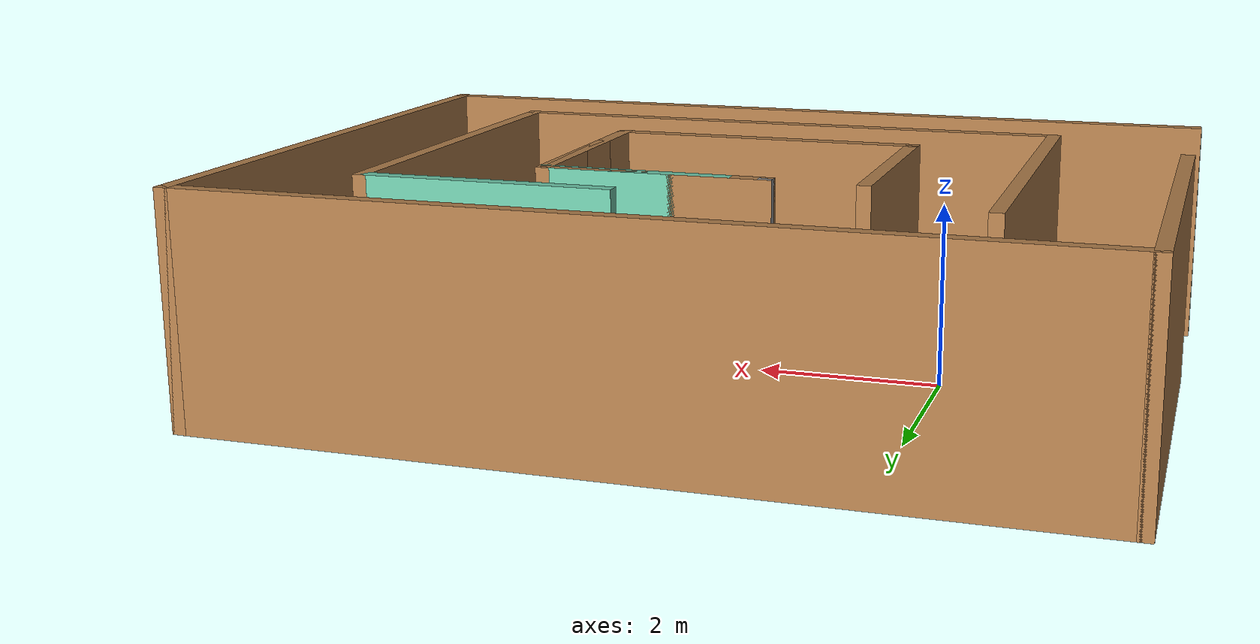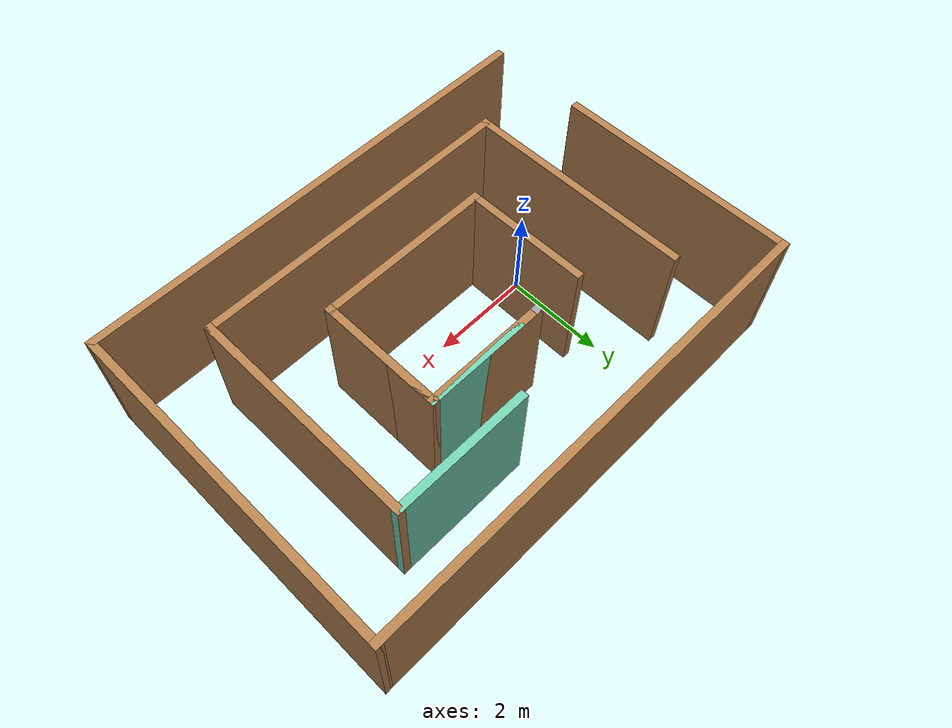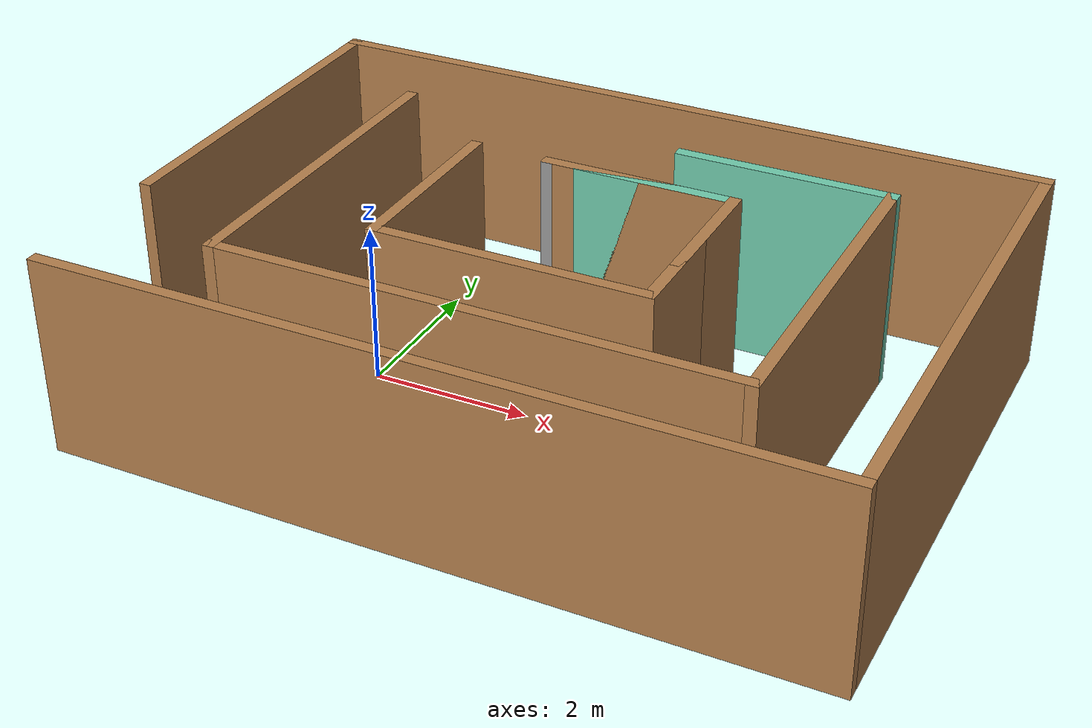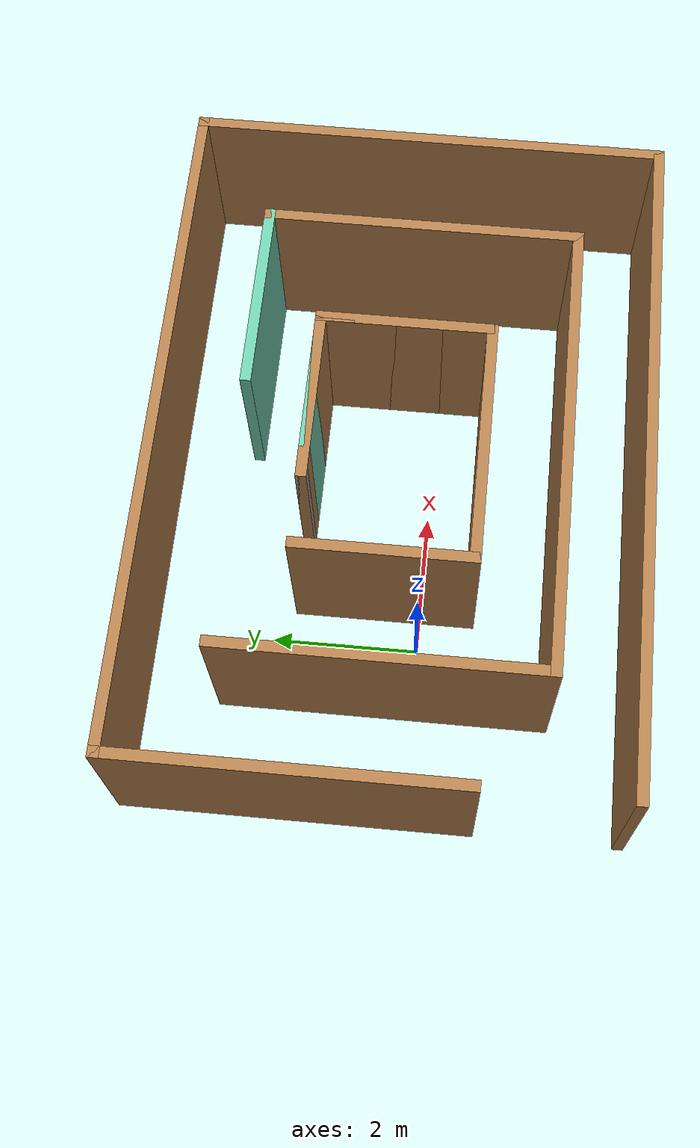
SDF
<?xml version='1.0'?>
<sdf version='1.6'>
  <model name='MazeBox'>
    <pose frame=''>2.255 0.41 0 0 -0 0</pose>
    <link name='Wall_0'>
      <collision name='Wall_0_Collision'>
        <geometry>
          <box>
            <size>4.75 0.15 2.5</size>
          </box>
        </geometry>
        <pose frame=''>0 0 1.25 0 -0 0</pose>
      </collision>
      <visual name='Wall_0_Visual'>
        <pose frame=''>0 0 1.25 0 -0 0</pose>
        <geometry>
          <box>
            <size>4.75 0.15 2.5</size>
          </box>
        </geometry>
        <material>
          <script>
            <uri>file://media/materials/scripts/gazebo.material</uri>
            <name>Gazebo/Wood</name>
          </script>
          <ambient>1 1 1 1</ambient>
        </material>
        <meta>
          <layer>0</layer>
        </meta>
      </visual>
      <pose frame=''>-4.675 1 0 0 -0 1.5708</pose>
    </link>
    <link name='Wall_1'>
      <collision name='Wall_1_Collision'>
        <geometry>
          <box>
            <size>9.5 0.15 2.5</size>
          </box>
        </geometry>
        <pose frame=''>0 0 1.25 0 -0 0</pose>
      </collision>
      <visual name='Wall_1_Visual'>
        <pose frame=''>0 0 1.25 0 -0 0</pose>
        <geometry>
          <box>
            <size>9.5 0.15 2.5</size>
          </box>
        </geometry>
        <material>
          <script>
            <uri>file://media/materials/scripts/gazebo.material</uri>
            <name>Gazebo/Wood</name>
          </script>
          <ambient>1 1 1 1</ambient>
        </material>
        <meta>
          <layer>0</layer>
        </meta>
      </visual>
      <pose frame=''>0 3.3 0 0 -0 0</pose>
    </link>
    <link name='Wall_10'>
      <collision name='Wall_10_Collision'>
        <geometry>
          <box>
            <size>2.5 0.15 2.5</size>
          </box>
        </geometry>
        <pose frame=''>0 0 1.25 0 -0 0</pose>
      </collision>
      <visual name='Wall_10_Visual'>
        <pose frame=''>0 0 1.25 0 -0 0</pose>
        <geometry>
          <box>
            <size>2.5 0.15 2.5</size>
          </box>
        </geometry>
        <material>
          <script>
            <uri>file://media/materials/scripts/gazebo.material</uri>
            <name>Gazebo/Wood</name>
          </script>
          <ambient>1 1 1 1</ambient>
        </material>
        <meta>
          <layer>0</layer>
        </meta>
      </visual>
      <pose frame=''>-1.75858 0.067702 0 0 0 -1.5708</pose>
    </link>
    <link name='Wall_11'>
      <collision name='Wall_11_Collision'>
        <geometry>
          <box>
            <size>3.5 0.15 2.5</size>
          </box>
        </geometry>
        <pose frame=''>0 0 1.25 0 -0 0</pose>
      </collision>
      <visual name='Wall_11_Visual'>
        <pose frame=''>0 0 1.25 0 -0 0</pose>
        <geometry>
          <box>
            <size>3.5 0.15 2.5</size>
          </box>
        </geometry>
        <material>
          <script>
            <uri>file://media/materials/scripts/gazebo.material</uri>
            <name>Gazebo/Wood</name>
          </script>
          <ambient>1 1 1 1</ambient>
        </material>
        <meta>
          <layer>0</layer>
        </meta>
      </visual>
      <pose frame=''>-0.083579 -1.1073 0 0 -0 0</pose>
    </link>
    <link name='Wall_12'>
      <collision name='Wall_12_Collision'>
        <geometry>
          <box>
            <size>2.5 0.15 2.5</size>
          </box>
        </geometry>
        <pose frame=''>0 0 1.25 0 -0 0</pose>
      </collision>
      <visual name='Wall_12_Visual'>
        <pose frame=''>0 0 1.25 0 -0 0</pose>
        <geometry>
          <box>
            <size>2.5 0.15 2.5</size>
          </box>
        </geometry>
        <material>
          <script>
            <uri>file://media/materials/scripts/gazebo.material</uri>
            <name>Gazebo/Wood</name>
          </script>
          <ambient>1 1 1 1</ambient>
        </material>
        <meta>
          <layer>0</layer>
        </meta>
      </visual>
      <pose frame=''>1.59142 0.067702 0 0 -0 1.5708</pose>
    </link>
    <link name='Wall_13'>
      <collision name='Wall_13_Collision'>
        <geometry>
          <box>
            <size>2.5 0.15 2.5</size>
          </box>
        </geometry>
        <pose frame=''>0 0 1.25 0 -0 0</pose>
      </collision>
      <visual name='Wall_13_Visual'>
        <pose frame=''>0 0 1.25 0 -0 0</pose>
        <geometry>
          <box>
            <size>2.5 0.15 2.5</size>
          </box>
        </geometry>
        <material>
          <script>
            <uri>file://media/materials/scripts/gazebo.material</uri>
            <name>Gazebo/Wood</name>
          </script>
          <ambient>1 1 1 1</ambient>
        </material>
        <meta>
          <layer>0</layer>
        </meta>
      </visual>
      <pose frame=''>0.416421 1.2427 0 0 -0 3.14159</pose>
    </link>
    <link name='Wall_14'>
      <collision name='Wall_14_Collision'>
        <geometry>
          <box>
            <size>0.15 0.15 2.5</size>
          </box>
        </geometry>
        <pose frame=''>0 0 1.25 0 -0 0</pose>
      </collision>
      <visual name='Wall_14_Visual'>
        <pose frame=''>0 0 1.25 0 -0 0</pose>
        <geometry>
          <box>
            <size>0.15 0.15 2.5</size>
          </box>
        </geometry>
        <material>
          <script>
            <uri>file://media/materials/scripts/gazebo.material</uri>
            <name>Gazebo/Grey</name>
          </script>
          <ambient>1 1 1 1</ambient>
        </material>
        <meta>
          <layer>0</layer>
        </meta>
      </visual>
      <pose frame=''>-0.758579 1.2427 0 0 -0 0</pose>
    </link>
    <link name='Wall_16'>
      <collision name='Wall_16_Collision'>
        <geometry>
          <box>
            <size>2.0659 0.15 2.5</size>
          </box>
        </geometry>
        <pose frame=''>0 0 1.25 0 -0 0</pose>
      </collision>
      <visual name='Wall_16_Visual'>
        <pose frame=''>0 0 1.25 0 -0 0</pose>
        <geometry>
          <box>
            <size>2.0659 0.15 2.5</size>
          </box>
        </geometry>
        <material>
          <script>
            <uri>file://media/materials/scripts/gazebo.material</uri>
            <name>Gazebo/Grey</name>
          </script>
          <ambient>0.435294 0.796078 0.67451 1</ambient>
        </material>
        <meta>
          <layer>0</layer>
        </meta>
      </visual>
      <pose frame=''>0.63347 1.2427 0 0 -0 0</pose>
    </link>
    <link name='Wall_17'>
      <collision name='Wall_17_Collision'>
        <geometry>
          <box>
            <size>1.75 0.15 2.5</size>
          </box>
        </geometry>
        <pose frame=''>0 0 1.25 0 -0 0</pose>
      </collision>
      <visual name='Wall_17_Visual'>
        <pose frame=''>0 0 1.25 0 -0 0</pose>
        <geometry>
          <box>
            <size>1.75 0.15 2.5</size>
          </box>
        </geometry>
        <material>
          <script>
            <uri>file://media/materials/scripts/gazebo.material</uri>
            <name>Gazebo/Wood</name>
          </script>
          <ambient>1 1 1 1</ambient>
        </material>
        <meta>
          <layer>0</layer>
        </meta>
      </visual>
      <pose frame=''>1.59142 0.442702 0 0 0 -1.5708</pose>
    </link>
    <link name='Wall_2'>
      <collision name='Wall_2_Collision'>
        <geometry>
          <box>
            <size>6.75 0.15 2.5</size>
          </box>
        </geometry>
        <pose frame=''>0 0 1.25 0 -0 0</pose>
      </collision>
      <visual name='Wall_2_Visual'>
        <pose frame=''>0 0 1.25 0 -0 0</pose>
        <geometry>
          <box>
            <size>6.75 0.15 2.5</size>
          </box>
        </geometry>
        <material>
          <script>
            <uri>file://media/materials/scripts/gazebo.material</uri>
            <name>Gazebo/Wood</name>
          </script>
          <ambient>1 1 1 1</ambient>
        </material>
        <meta>
          <layer>0</layer>
        </meta>
      </visual>
      <pose frame=''>4.675 0 0 0 0 -1.5708</pose>
    </link>
    <link name='Wall_3'>
      <collision name='Wall_3_Collision'>
        <geometry>
          <box>
            <size>9.5 0.15 2.5</size>
          </box>
        </geometry>
        <pose frame=''>0 0 1.25 0 -0 0</pose>
      </collision>
      <visual name='Wall_3_Visual'>
        <pose frame=''>0 0 1.25 0 -0 0</pose>
        <geometry>
          <box>
            <size>9.5 0.15 2.5</size>
          </box>
        </geometry>
        <material>
          <script>
            <uri>file://media/materials/scripts/gazebo.material</uri>
            <name>Gazebo/Wood</name>
          </script>
          <ambient>1 1 1 1</ambient>
        </material>
        <meta>
          <layer>0</layer>
        </meta>
      </visual>
      <pose frame=''>0 -3.3 0 0 -0 3.14159</pose>
    </link>
    <link name='Wall_5'>
      <collision name='Wall_5_Collision'>
        <geometry>
          <box>
            <size>4.5 0.15 2.5</size>
          </box>
        </geometry>
        <pose frame=''>0 0 1.25 0 -0 0</pose>
      </collision>
      <visual name='Wall_5_Visual'>
        <pose frame=''>0 0 1.25 0 -0 0</pose>
        <geometry>
          <box>
            <size>4.5 0.15 2.5</size>
          </box>
        </geometry>
        <material>
          <script>
            <uri>file://media/materials/scripts/gazebo.material</uri>
            <name>Gazebo/Wood</name>
          </script>
          <ambient>1 1 1 1</ambient>
        </material>
        <meta>
          <layer>0</layer>
        </meta>
      </visual>
      <pose frame=''>-3.16955 -0.030205 0 0 0 -1.5708</pose>
    </link>
    <link name='Wall_6'>
      <collision name='Wall_6_Collision'>
        <geometry>
          <box>
            <size>6.5 0.15 2.5</size>
          </box>
        </geometry>
        <pose frame=''>0 0 1.25 0 -0 0</pose>
      </collision>
      <visual name='Wall_6_Visual'>
        <pose frame=''>0 0 1.25 0 -0 0</pose>
        <geometry>
          <box>
            <size>6.5 0.15 2.5</size>
          </box>
        </geometry>
        <material>
          <script>
            <uri>file://media/materials/scripts/gazebo.material</uri>
            <name>Gazebo/Wood</name>
          </script>
          <ambient>1 1 1 1</ambient>
        </material>
        <meta>
          <layer>0</layer>
        </meta>
      </visual>
      <pose frame=''>0.005454 -2.2052 0 0 -0 0</pose>
    </link>
    <link name='Wall_7'>
      <collision name='Wall_7_Collision'>
        <geometry>
          <box>
            <size>4.5 0.15 2.5</size>
          </box>
        </geometry>
        <pose frame=''>0 0 1.25 0 -0 0</pose>
      </collision>
      <visual name='Wall_7_Visual'>
        <pose frame=''>0 0 1.25 0 -0 0</pose>
        <geometry>
          <box>
            <size>4.5 0.15 2.5</size>
          </box>
        </geometry>
        <material>
          <script>
            <uri>file://media/materials/scripts/gazebo.material</uri>
            <name>Gazebo/Wood</name>
          </script>
          <ambient>1 1 1 1</ambient>
        </material>
        <meta>
          <layer>0</layer>
        </meta>
      </visual>
      <pose frame=''>3.18045 -0.030205 0 0 -0 1.5708</pose>
    </link>
    <link name='Wall_8'>
      <collision name='Wall_8_Collision'>
        <geometry>
          <box>
            <size>2.75 0.15 2.5</size>
          </box>
        </geometry>
        <pose frame=''>0 0 1.25 0 -0 0</pose>
      </collision>
      <visual name='Wall_8_Visual'>
        <pose frame=''>0 0 1.25 0 -0 0</pose>
        <geometry>
          <box>
            <size>2.75 0.15 2.5</size>
          </box>
        </geometry>
        <material>
          <script>
            <uri>file://media/materials/scripts/gazebo.material</uri>
            <name>Gazebo/Grey</name>
          </script>
          <ambient>0.435294 0.796078 0.67451 1</ambient>
        </material>
        <meta>
          <layer>0</layer>
        </meta>
      </visual>
      <pose frame=''>1.88045 2.14479 0 0 -0 3.14159</pose>
    </link>
    <static>1</static>
  </model>
</sdf>
